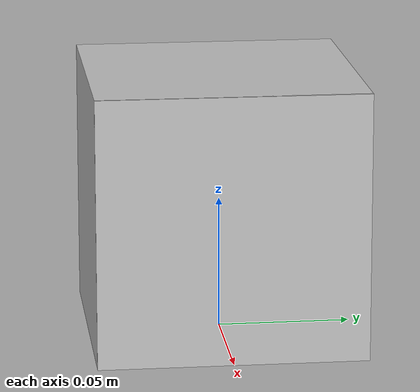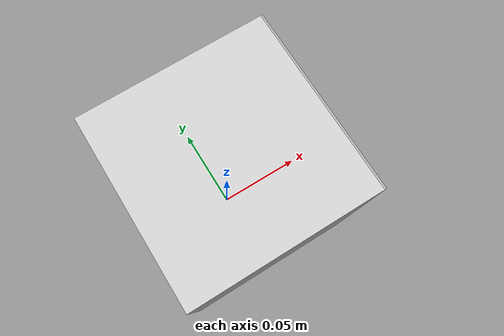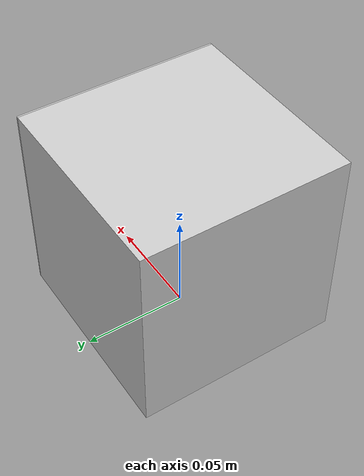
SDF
<?xml version="1.0" ?>
<sdf version="1.6">
  <model name="qr_cube">
    <static>true</static>
    <link name="link">
      <collision name="collision">
        <pose>0 0 0.05 0 0 0</pose>
        <geometry>
          <box>
            <size>0.1 0.1 0.1</size>
          </box>
        </geometry>
      </collision>

      <visual name="visual_cube">
        <pose>0 0 0.05 0 0 0</pose>
        <geometry>
          <box>
            <size>0.1 0.1 0.1</size>
          </box>
        </geometry>
        <material>
          <ambient>0.8 0.8 0.8 1</ambient>
          <diffuse>0.8 0.8 0.8 1</diffuse>
        </material>
      </visual>

      <visual name="visual_front_qr">
        <pose>0.0501 0 0.05 0 0 0</pose>
        <geometry>
          <box>
            <size>0.001 0.1 0.1</size>
          </box>
        </geometry>
        <material>
          <script>
            <uri>model://qr_cube/materials/scripts</uri>
            <uri>model://qr_cube/materials/textures</uri>
            <name>QRCode/Image</name>
          </script>
        </material>
      </visual>
    </link>
  </model>
</sdf>
